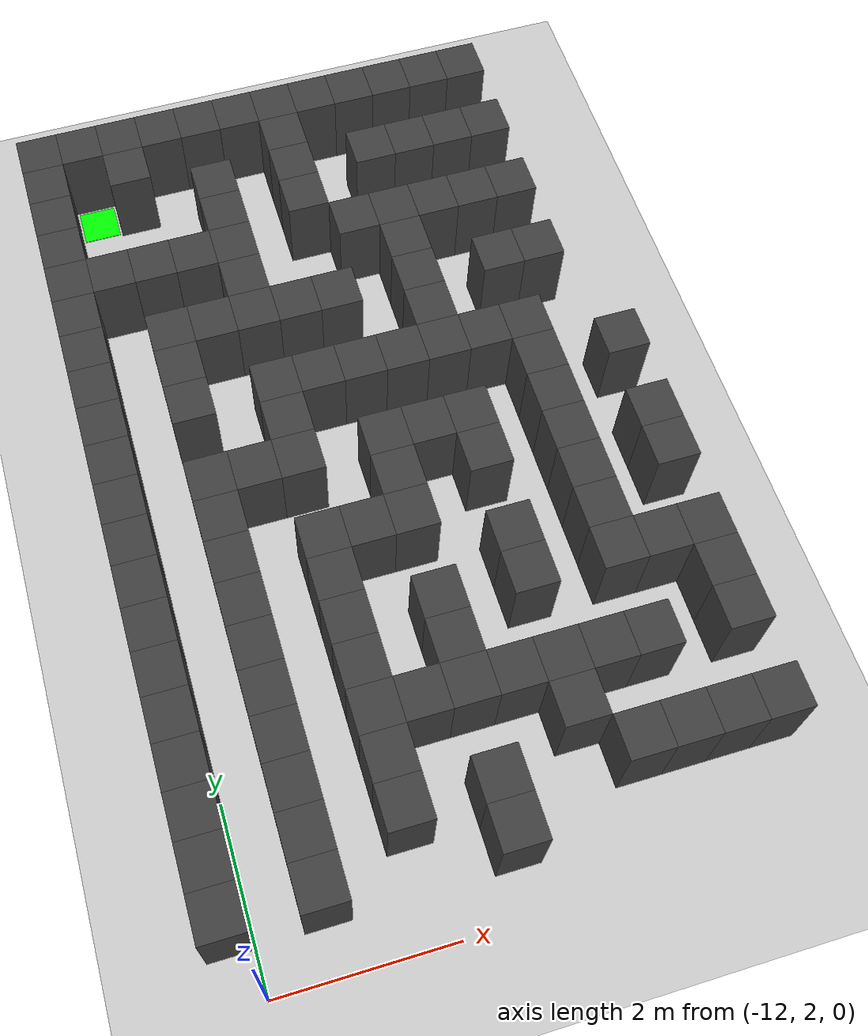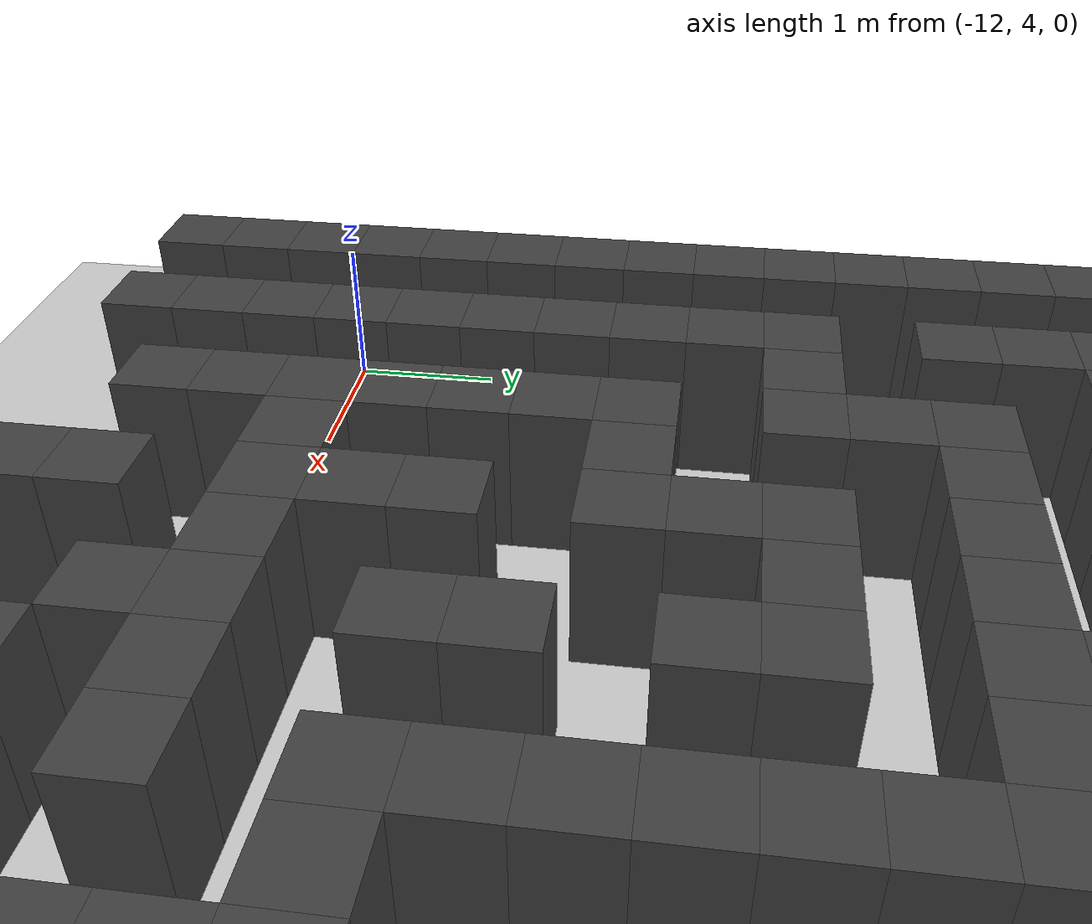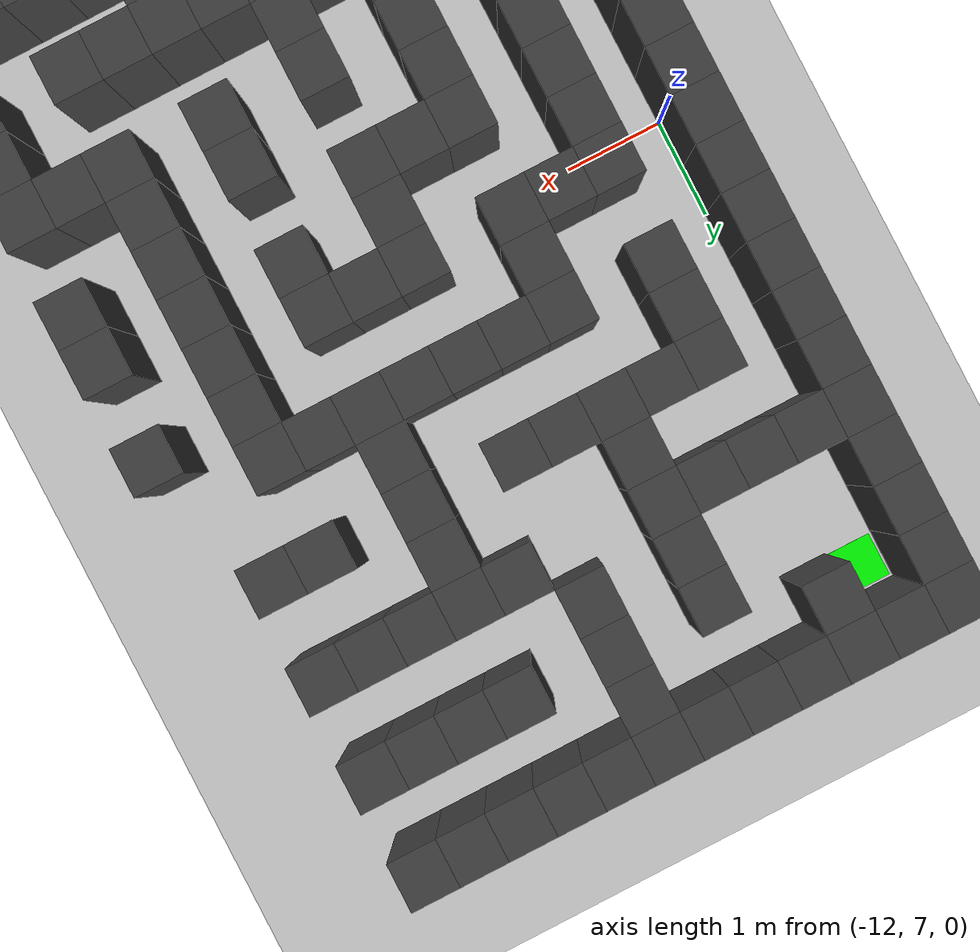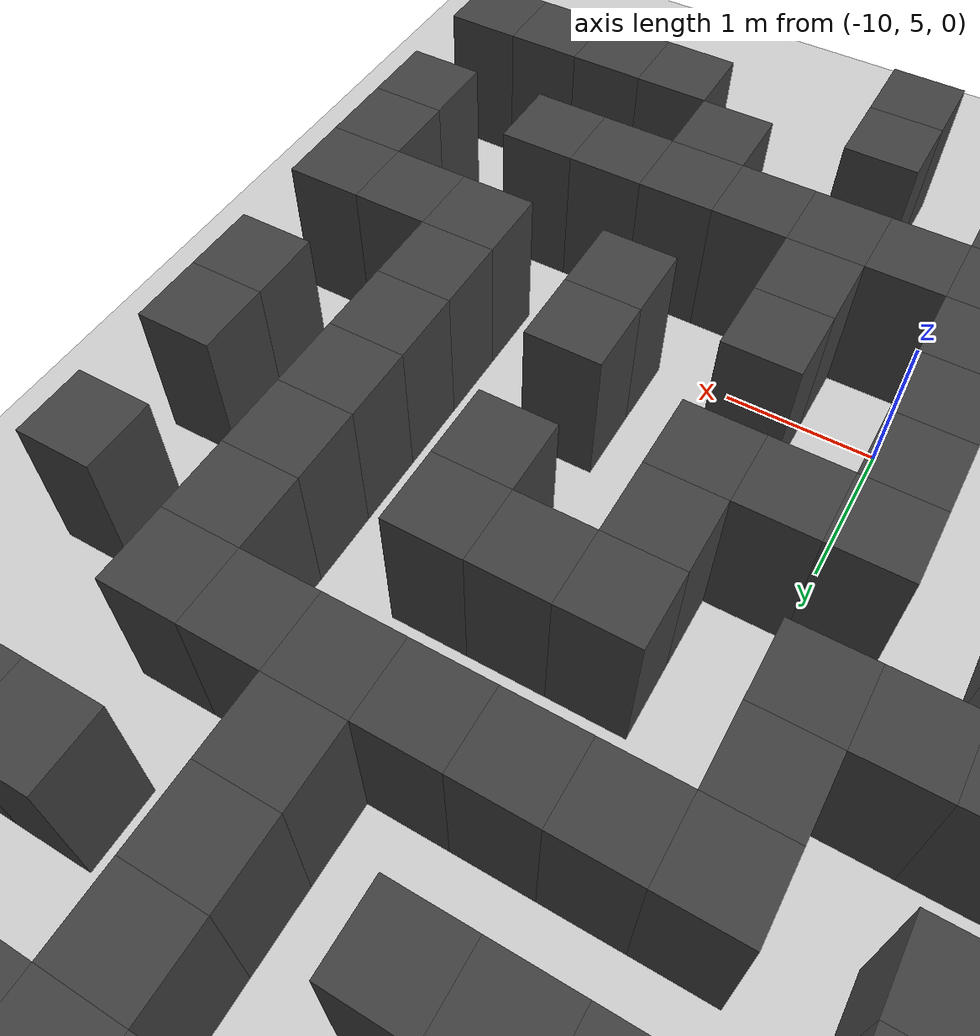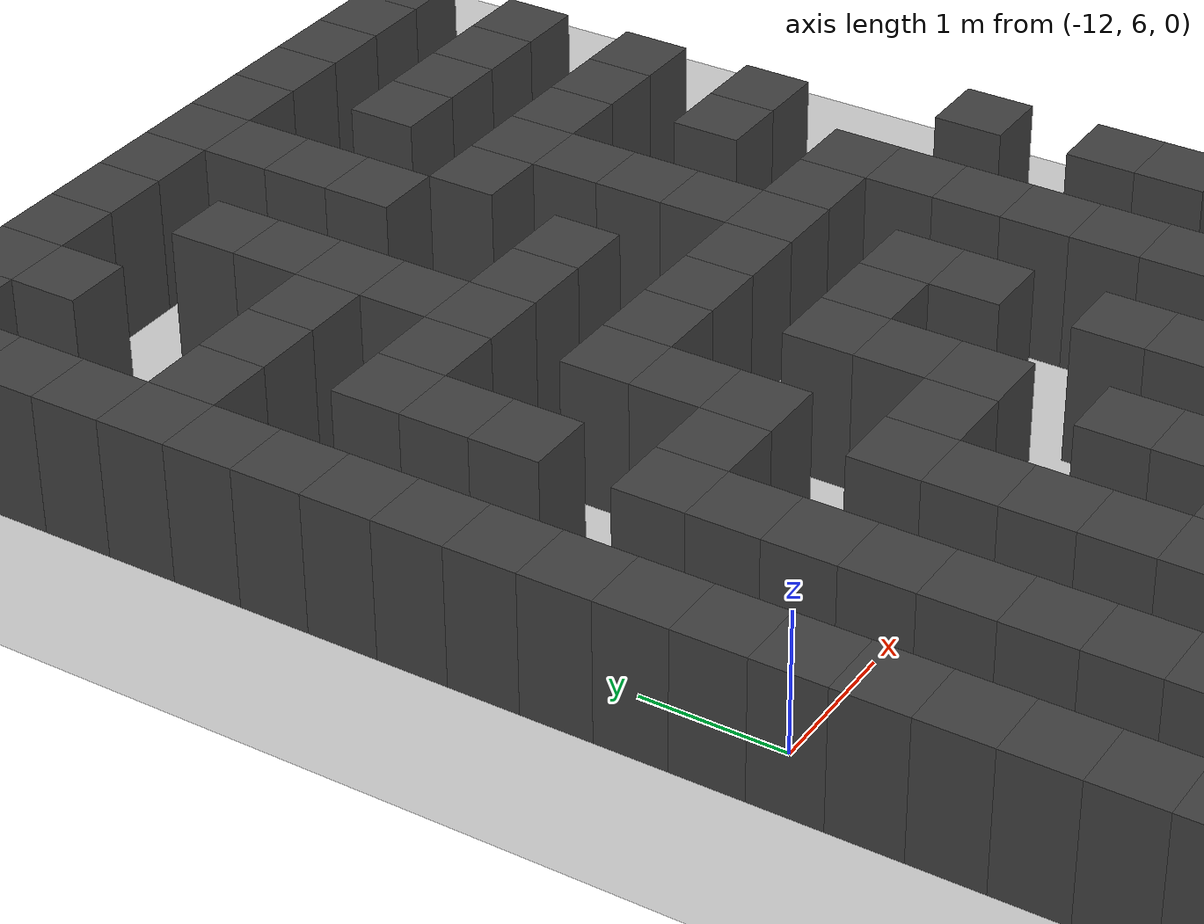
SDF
<sdf version="1.7">
 <world name="map_17508">
  <model name="ground_plane">
   <static>true</static>
   <link name="link">
    <collision name="collision">
     <geometry><plane><normal>0 0 1</normal><size>200 200</size></plane></geometry>
    </collision>
    <visual name="visual">
     <geometry><plane><normal>0 0 1</normal><size>200 200</size></plane></geometry>
     <material><ambient>0.8 0.8 0.8 1</ambient><diffuse>0.8 0.8 0.8 1</diffuse></material>
    </visual>
   </link>
  </model>
  <model name="maze_environment">
   <static>true</static>
   <link name="wall_0">
    <pose>-12.250 12.250 0.500 0 0 0</pose>
    <collision name="col"><geometry><box><size>0.5 0.5 1.0</size></box></geometry></collision>
    <visual name="vis">
     <geometry><box><size>0.5 0.5 1.0</size></box></geometry>
     <material><ambient>0.15 0.15 0.15 1</ambient><diffuse>0.25 0.25 0.25 1</diffuse></material>
    </visual>
   </link>
   <link name="wall_1">
    <pose>-11.750 12.250 0.500 0 0 0</pose>
    <collision name="col"><geometry><box><size>0.5 0.5 1.0</size></box></geometry></collision>
    <visual name="vis">
     <geometry><box><size>0.5 0.5 1.0</size></box></geometry>
     <material><ambient>0.15 0.15 0.15 1</ambient><diffuse>0.25 0.25 0.25 1</diffuse></material>
    </visual>
   </link>
   <link name="wall_2">
    <pose>-11.250 12.250 0.500 0 0 0</pose>
    <collision name="col"><geometry><box><size>0.5 0.5 1.0</size></box></geometry></collision>
    <visual name="vis">
     <geometry><box><size>0.5 0.5 1.0</size></box></geometry>
     <material><ambient>0.15 0.15 0.15 1</ambient><diffuse>0.25 0.25 0.25 1</diffuse></material>
    </visual>
   </link>
   <link name="wall_3">
    <pose>-10.750 12.250 0.500 0 0 0</pose>
    <collision name="col"><geometry><box><size>0.5 0.5 1.0</size></box></geometry></collision>
    <visual name="vis">
     <geometry><box><size>0.5 0.5 1.0</size></box></geometry>
     <material><ambient>0.15 0.15 0.15 1</ambient><diffuse>0.25 0.25 0.25 1</diffuse></material>
    </visual>
   </link>
   <link name="wall_4">
    <pose>-10.250 12.250 0.500 0 0 0</pose>
    <collision name="col"><geometry><box><size>0.5 0.5 1.0</size></box></geometry></collision>
    <visual name="vis">
     <geometry><box><size>0.5 0.5 1.0</size></box></geometry>
     <material><ambient>0.15 0.15 0.15 1</ambient><diffuse>0.25 0.25 0.25 1</diffuse></material>
    </visual>
   </link>
   <link name="wall_5">
    <pose>-9.750 12.250 0.500 0 0 0</pose>
    <collision name="col"><geometry><box><size>0.5 0.5 1.0</size></box></geometry></collision>
    <visual name="vis">
     <geometry><box><size>0.5 0.5 1.0</size></box></geometry>
     <material><ambient>0.15 0.15 0.15 1</ambient><diffuse>0.25 0.25 0.25 1</diffuse></material>
    </visual>
   </link>
   <link name="wall_6">
    <pose>-9.250 12.250 0.500 0 0 0</pose>
    <collision name="col"><geometry><box><size>0.5 0.5 1.0</size></box></geometry></collision>
    <visual name="vis">
     <geometry><box><size>0.5 0.5 1.0</size></box></geometry>
     <material><ambient>0.15 0.15 0.15 1</ambient><diffuse>0.25 0.25 0.25 1</diffuse></material>
    </visual>
   </link>
   <link name="wall_7">
    <pose>-8.750 12.250 0.500 0 0 0</pose>
    <collision name="col"><geometry><box><size>0.5 0.5 1.0</size></box></geometry></collision>
    <visual name="vis">
     <geometry><box><size>0.5 0.5 1.0</size></box></geometry>
     <material><ambient>0.15 0.15 0.15 1</ambient><diffuse>0.25 0.25 0.25 1</diffuse></material>
    </visual>
   </link>
   <link name="wall_8">
    <pose>-8.250 12.250 0.500 0 0 0</pose>
    <collision name="col"><geometry><box><size>0.5 0.5 1.0</size></box></geometry></collision>
    <visual name="vis">
     <geometry><box><size>0.5 0.5 1.0</size></box></geometry>
     <material><ambient>0.15 0.15 0.15 1</ambient><diffuse>0.25 0.25 0.25 1</diffuse></material>
    </visual>
   </link>
   <link name="wall_9">
    <pose>-7.750 12.250 0.500 0 0 0</pose>
    <collision name="col"><geometry><box><size>0.5 0.5 1.0</size></box></geometry></collision>
    <visual name="vis">
     <geometry><box><size>0.5 0.5 1.0</size></box></geometry>
     <material><ambient>0.15 0.15 0.15 1</ambient><diffuse>0.25 0.25 0.25 1</diffuse></material>
    </visual>
   </link>
   <link name="wall_10">
    <pose>-7.250 12.250 0.500 0 0 0</pose>
    <collision name="col"><geometry><box><size>0.5 0.5 1.0</size></box></geometry></collision>
    <visual name="vis">
     <geometry><box><size>0.5 0.5 1.0</size></box></geometry>
     <material><ambient>0.15 0.15 0.15 1</ambient><diffuse>0.25 0.25 0.25 1</diffuse></material>
    </visual>
   </link>
   <link name="wall_11">
    <pose>-6.750 12.250 0.500 0 0 0</pose>
    <collision name="col"><geometry><box><size>0.5 0.5 1.0</size></box></geometry></collision>
    <visual name="vis">
     <geometry><box><size>0.5 0.5 1.0</size></box></geometry>
     <material><ambient>0.15 0.15 0.15 1</ambient><diffuse>0.25 0.25 0.25 1</diffuse></material>
    </visual>
   </link>
   <link name="wall_50">
    <pose>-12.250 11.750 0.500 0 0 0</pose>
    <collision name="col"><geometry><box><size>0.5 0.5 1.0</size></box></geometry></collision>
    <visual name="vis">
     <geometry><box><size>0.5 0.5 1.0</size></box></geometry>
     <material><ambient>0.15 0.15 0.15 1</ambient><diffuse>0.25 0.25 0.25 1</diffuse></material>
    </visual>
   </link>
   <link name="wall_51">
    <pose>-11.250 11.750 0.500 0 0 0</pose>
    <collision name="col"><geometry><box><size>0.5 0.5 1.0</size></box></geometry></collision>
    <visual name="vis">
     <geometry><box><size>0.5 0.5 1.0</size></box></geometry>
     <material><ambient>0.15 0.15 0.15 1</ambient><diffuse>0.25 0.25 0.25 1</diffuse></material>
    </visual>
   </link>
   <link name="wall_52">
    <pose>-9.250 11.750 0.500 0 0 0</pose>
    <collision name="col"><geometry><box><size>0.5 0.5 1.0</size></box></geometry></collision>
    <visual name="vis">
     <geometry><box><size>0.5 0.5 1.0</size></box></geometry>
     <material><ambient>0.15 0.15 0.15 1</ambient><diffuse>0.25 0.25 0.25 1</diffuse></material>
    </visual>
   </link>
   <link name="wall_58">
    <pose>-12.250 11.250 0.500 0 0 0</pose>
    <collision name="col"><geometry><box><size>0.5 0.5 1.0</size></box></geometry></collision>
    <visual name="vis">
     <geometry><box><size>0.5 0.5 1.0</size></box></geometry>
     <material><ambient>0.15 0.15 0.15 1</ambient><diffuse>0.25 0.25 0.25 1</diffuse></material>
    </visual>
   </link>
   <link name="wall_59">
    <pose>-10.250 11.250 0.500 0 0 0</pose>
    <collision name="col"><geometry><box><size>0.5 0.5 1.0</size></box></geometry></collision>
    <visual name="vis">
     <geometry><box><size>0.5 0.5 1.0</size></box></geometry>
     <material><ambient>0.15 0.15 0.15 1</ambient><diffuse>0.25 0.25 0.25 1</diffuse></material>
    </visual>
   </link>
   <link name="wall_60">
    <pose>-9.250 11.250 0.500 0 0 0</pose>
    <collision name="col"><geometry><box><size>0.5 0.5 1.0</size></box></geometry></collision>
    <visual name="vis">
     <geometry><box><size>0.5 0.5 1.0</size></box></geometry>
     <material><ambient>0.15 0.15 0.15 1</ambient><diffuse>0.25 0.25 0.25 1</diffuse></material>
    </visual>
   </link>
   <link name="wall_61">
    <pose>-8.250 11.250 0.500 0 0 0</pose>
    <collision name="col"><geometry><box><size>0.5 0.5 1.0</size></box></geometry></collision>
    <visual name="vis">
     <geometry><box><size>0.5 0.5 1.0</size></box></geometry>
     <material><ambient>0.15 0.15 0.15 1</ambient><diffuse>0.25 0.25 0.25 1</diffuse></material>
    </visual>
   </link>
   <link name="wall_62">
    <pose>-7.750 11.250 0.500 0 0 0</pose>
    <collision name="col"><geometry><box><size>0.5 0.5 1.0</size></box></geometry></collision>
    <visual name="vis">
     <geometry><box><size>0.5 0.5 1.0</size></box></geometry>
     <material><ambient>0.15 0.15 0.15 1</ambient><diffuse>0.25 0.25 0.25 1</diffuse></material>
    </visual>
   </link>
   <link name="wall_63">
    <pose>-7.250 11.250 0.500 0 0 0</pose>
    <collision name="col"><geometry><box><size>0.5 0.5 1.0</size></box></geometry></collision>
    <visual name="vis">
     <geometry><box><size>0.5 0.5 1.0</size></box></geometry>
     <material><ambient>0.15 0.15 0.15 1</ambient><diffuse>0.25 0.25 0.25 1</diffuse></material>
    </visual>
   </link>
   <link name="wall_64">
    <pose>-6.750 11.250 0.500 0 0 0</pose>
    <collision name="col"><geometry><box><size>0.5 0.5 1.0</size></box></geometry></collision>
    <visual name="vis">
     <geometry><box><size>0.5 0.5 1.0</size></box></geometry>
     <material><ambient>0.15 0.15 0.15 1</ambient><diffuse>0.25 0.25 0.25 1</diffuse></material>
    </visual>
   </link>
   <link name="wall_94">
    <pose>-12.250 10.750 0.500 0 0 0</pose>
    <collision name="col"><geometry><box><size>0.5 0.5 1.0</size></box></geometry></collision>
    <visual name="vis">
     <geometry><box><size>0.5 0.5 1.0</size></box></geometry>
     <material><ambient>0.15 0.15 0.15 1</ambient><diffuse>0.25 0.25 0.25 1</diffuse></material>
    </visual>
   </link>
   <link name="wall_95">
    <pose>-10.250 10.750 0.500 0 0 0</pose>
    <collision name="col"><geometry><box><size>0.5 0.5 1.0</size></box></geometry></collision>
    <visual name="vis">
     <geometry><box><size>0.5 0.5 1.0</size></box></geometry>
     <material><ambient>0.15 0.15 0.15 1</ambient><diffuse>0.25 0.25 0.25 1</diffuse></material>
    </visual>
   </link>
   <link name="wall_96">
    <pose>-9.250 10.750 0.500 0 0 0</pose>
    <collision name="col"><geometry><box><size>0.5 0.5 1.0</size></box></geometry></collision>
    <visual name="vis">
     <geometry><box><size>0.5 0.5 1.0</size></box></geometry>
     <material><ambient>0.15 0.15 0.15 1</ambient><diffuse>0.25 0.25 0.25 1</diffuse></material>
    </visual>
   </link>
   <link name="wall_105">
    <pose>-12.250 10.250 0.500 0 0 0</pose>
    <collision name="col"><geometry><box><size>0.5 0.5 1.0</size></box></geometry></collision>
    <visual name="vis">
     <geometry><box><size>0.5 0.5 1.0</size></box></geometry>
     <material><ambient>0.15 0.15 0.15 1</ambient><diffuse>0.25 0.25 0.25 1</diffuse></material>
    </visual>
   </link>
   <link name="wall_106">
    <pose>-11.750 10.250 0.500 0 0 0</pose>
    <collision name="col"><geometry><box><size>0.5 0.5 1.0</size></box></geometry></collision>
    <visual name="vis">
     <geometry><box><size>0.5 0.5 1.0</size></box></geometry>
     <material><ambient>0.15 0.15 0.15 1</ambient><diffuse>0.25 0.25 0.25 1</diffuse></material>
    </visual>
   </link>
   <link name="wall_107">
    <pose>-11.250 10.250 0.500 0 0 0</pose>
    <collision name="col"><geometry><box><size>0.5 0.5 1.0</size></box></geometry></collision>
    <visual name="vis">
     <geometry><box><size>0.5 0.5 1.0</size></box></geometry>
     <material><ambient>0.15 0.15 0.15 1</ambient><diffuse>0.25 0.25 0.25 1</diffuse></material>
    </visual>
   </link>
   <link name="wall_108">
    <pose>-10.750 10.250 0.500 0 0 0</pose>
    <collision name="col"><geometry><box><size>0.5 0.5 1.0</size></box></geometry></collision>
    <visual name="vis">
     <geometry><box><size>0.5 0.5 1.0</size></box></geometry>
     <material><ambient>0.15 0.15 0.15 1</ambient><diffuse>0.25 0.25 0.25 1</diffuse></material>
    </visual>
   </link>
   <link name="wall_109">
    <pose>-10.250 10.250 0.500 0 0 0</pose>
    <collision name="col"><geometry><box><size>0.5 0.5 1.0</size></box></geometry></collision>
    <visual name="vis">
     <geometry><box><size>0.5 0.5 1.0</size></box></geometry>
     <material><ambient>0.15 0.15 0.15 1</ambient><diffuse>0.25 0.25 0.25 1</diffuse></material>
    </visual>
   </link>
   <link name="wall_110">
    <pose>-8.750 10.250 0.500 0 0 0</pose>
    <collision name="col"><geometry><box><size>0.5 0.5 1.0</size></box></geometry></collision>
    <visual name="vis">
     <geometry><box><size>0.5 0.5 1.0</size></box></geometry>
     <material><ambient>0.15 0.15 0.15 1</ambient><diffuse>0.25 0.25 0.25 1</diffuse></material>
    </visual>
   </link>
   <link name="wall_111">
    <pose>-8.250 10.250 0.500 0 0 0</pose>
    <collision name="col"><geometry><box><size>0.5 0.5 1.0</size></box></geometry></collision>
    <visual name="vis">
     <geometry><box><size>0.5 0.5 1.0</size></box></geometry>
     <material><ambient>0.15 0.15 0.15 1</ambient><diffuse>0.25 0.25 0.25 1</diffuse></material>
    </visual>
   </link>
   <link name="wall_112">
    <pose>-7.750 10.250 0.500 0 0 0</pose>
    <collision name="col"><geometry><box><size>0.5 0.5 1.0</size></box></geometry></collision>
    <visual name="vis">
     <geometry><box><size>0.5 0.5 1.0</size></box></geometry>
     <material><ambient>0.15 0.15 0.15 1</ambient><diffuse>0.25 0.25 0.25 1</diffuse></material>
    </visual>
   </link>
   <link name="wall_113">
    <pose>-7.250 10.250 0.500 0 0 0</pose>
    <collision name="col"><geometry><box><size>0.5 0.5 1.0</size></box></geometry></collision>
    <visual name="vis">
     <geometry><box><size>0.5 0.5 1.0</size></box></geometry>
     <material><ambient>0.15 0.15 0.15 1</ambient><diffuse>0.25 0.25 0.25 1</diffuse></material>
    </visual>
   </link>
   <link name="wall_114">
    <pose>-6.750 10.250 0.500 0 0 0</pose>
    <collision name="col"><geometry><box><size>0.5 0.5 1.0</size></box></geometry></collision>
    <visual name="vis">
     <geometry><box><size>0.5 0.5 1.0</size></box></geometry>
     <material><ambient>0.15 0.15 0.15 1</ambient><diffuse>0.25 0.25 0.25 1</diffuse></material>
    </visual>
   </link>
   <link name="wall_146">
    <pose>-12.250 9.750 0.500 0 0 0</pose>
    <collision name="col"><geometry><box><size>0.5 0.5 1.0</size></box></geometry></collision>
    <visual name="vis">
     <geometry><box><size>0.5 0.5 1.0</size></box></geometry>
     <material><ambient>0.15 0.15 0.15 1</ambient><diffuse>0.25 0.25 0.25 1</diffuse></material>
    </visual>
   </link>
   <link name="wall_147">
    <pose>-10.250 9.750 0.500 0 0 0</pose>
    <collision name="col"><geometry><box><size>0.5 0.5 1.0</size></box></geometry></collision>
    <visual name="vis">
     <geometry><box><size>0.5 0.5 1.0</size></box></geometry>
     <material><ambient>0.15 0.15 0.15 1</ambient><diffuse>0.25 0.25 0.25 1</diffuse></material>
    </visual>
   </link>
   <link name="wall_148">
    <pose>-8.250 9.750 0.500 0 0 0</pose>
    <collision name="col"><geometry><box><size>0.5 0.5 1.0</size></box></geometry></collision>
    <visual name="vis">
     <geometry><box><size>0.5 0.5 1.0</size></box></geometry>
     <material><ambient>0.15 0.15 0.15 1</ambient><diffuse>0.25 0.25 0.25 1</diffuse></material>
    </visual>
   </link>
   <link name="wall_159">
    <pose>-12.250 9.250 0.500 0 0 0</pose>
    <collision name="col"><geometry><box><size>0.5 0.5 1.0</size></box></geometry></collision>
    <visual name="vis">
     <geometry><box><size>0.5 0.5 1.0</size></box></geometry>
     <material><ambient>0.15 0.15 0.15 1</ambient><diffuse>0.25 0.25 0.25 1</diffuse></material>
    </visual>
   </link>
   <link name="wall_160">
    <pose>-11.250 9.250 0.500 0 0 0</pose>
    <collision name="col"><geometry><box><size>0.5 0.5 1.0</size></box></geometry></collision>
    <visual name="vis">
     <geometry><box><size>0.5 0.5 1.0</size></box></geometry>
     <material><ambient>0.15 0.15 0.15 1</ambient><diffuse>0.25 0.25 0.25 1</diffuse></material>
    </visual>
   </link>
   <link name="wall_161">
    <pose>-10.750 9.250 0.500 0 0 0</pose>
    <collision name="col"><geometry><box><size>0.5 0.5 1.0</size></box></geometry></collision>
    <visual name="vis">
     <geometry><box><size>0.5 0.5 1.0</size></box></geometry>
     <material><ambient>0.15 0.15 0.15 1</ambient><diffuse>0.25 0.25 0.25 1</diffuse></material>
    </visual>
   </link>
   <link name="wall_162">
    <pose>-10.250 9.250 0.500 0 0 0</pose>
    <collision name="col"><geometry><box><size>0.5 0.5 1.0</size></box></geometry></collision>
    <visual name="vis">
     <geometry><box><size>0.5 0.5 1.0</size></box></geometry>
     <material><ambient>0.15 0.15 0.15 1</ambient><diffuse>0.25 0.25 0.25 1</diffuse></material>
    </visual>
   </link>
   <link name="wall_163">
    <pose>-9.750 9.250 0.500 0 0 0</pose>
    <collision name="col"><geometry><box><size>0.5 0.5 1.0</size></box></geometry></collision>
    <visual name="vis">
     <geometry><box><size>0.5 0.5 1.0</size></box></geometry>
     <material><ambient>0.15 0.15 0.15 1</ambient><diffuse>0.25 0.25 0.25 1</diffuse></material>
    </visual>
   </link>
   <link name="wall_164">
    <pose>-9.250 9.250 0.500 0 0 0</pose>
    <collision name="col"><geometry><box><size>0.5 0.5 1.0</size></box></geometry></collision>
    <visual name="vis">
     <geometry><box><size>0.5 0.5 1.0</size></box></geometry>
     <material><ambient>0.15 0.15 0.15 1</ambient><diffuse>0.25 0.25 0.25 1</diffuse></material>
    </visual>
   </link>
   <link name="wall_165">
    <pose>-8.250 9.250 0.500 0 0 0</pose>
    <collision name="col"><geometry><box><size>0.5 0.5 1.0</size></box></geometry></collision>
    <visual name="vis">
     <geometry><box><size>0.5 0.5 1.0</size></box></geometry>
     <material><ambient>0.15 0.15 0.15 1</ambient><diffuse>0.25 0.25 0.25 1</diffuse></material>
    </visual>
   </link>
   <link name="wall_166">
    <pose>-7.250 9.250 0.500 0 0 0</pose>
    <collision name="col"><geometry><box><size>0.5 0.5 1.0</size></box></geometry></collision>
    <visual name="vis">
     <geometry><box><size>0.5 0.5 1.0</size></box></geometry>
     <material><ambient>0.15 0.15 0.15 1</ambient><diffuse>0.25 0.25 0.25 1</diffuse></material>
    </visual>
   </link>
   <link name="wall_167">
    <pose>-6.750 9.250 0.500 0 0 0</pose>
    <collision name="col"><geometry><box><size>0.5 0.5 1.0</size></box></geometry></collision>
    <visual name="vis">
     <geometry><box><size>0.5 0.5 1.0</size></box></geometry>
     <material><ambient>0.15 0.15 0.15 1</ambient><diffuse>0.25 0.25 0.25 1</diffuse></material>
    </visual>
   </link>
   <link name="wall_191">
    <pose>-12.250 8.750 0.500 0 0 0</pose>
    <collision name="col"><geometry><box><size>0.5 0.5 1.0</size></box></geometry></collision>
    <visual name="vis">
     <geometry><box><size>0.5 0.5 1.0</size></box></geometry>
     <material><ambient>0.15 0.15 0.15 1</ambient><diffuse>0.25 0.25 0.25 1</diffuse></material>
    </visual>
   </link>
   <link name="wall_192">
    <pose>-11.250 8.750 0.500 0 0 0</pose>
    <collision name="col"><geometry><box><size>0.5 0.5 1.0</size></box></geometry></collision>
    <visual name="vis">
     <geometry><box><size>0.5 0.5 1.0</size></box></geometry>
     <material><ambient>0.15 0.15 0.15 1</ambient><diffuse>0.25 0.25 0.25 1</diffuse></material>
    </visual>
   </link>
   <link name="wall_193">
    <pose>-8.250 8.750 0.500 0 0 0</pose>
    <collision name="col"><geometry><box><size>0.5 0.5 1.0</size></box></geometry></collision>
    <visual name="vis">
     <geometry><box><size>0.5 0.5 1.0</size></box></geometry>
     <material><ambient>0.15 0.15 0.15 1</ambient><diffuse>0.25 0.25 0.25 1</diffuse></material>
    </visual>
   </link>
   <link name="wall_205">
    <pose>-12.250 8.250 0.500 0 0 0</pose>
    <collision name="col"><geometry><box><size>0.5 0.5 1.0</size></box></geometry></collision>
    <visual name="vis">
     <geometry><box><size>0.5 0.5 1.0</size></box></geometry>
     <material><ambient>0.15 0.15 0.15 1</ambient><diffuse>0.25 0.25 0.25 1</diffuse></material>
    </visual>
   </link>
   <link name="wall_206">
    <pose>-11.250 8.250 0.500 0 0 0</pose>
    <collision name="col"><geometry><box><size>0.5 0.5 1.0</size></box></geometry></collision>
    <visual name="vis">
     <geometry><box><size>0.5 0.5 1.0</size></box></geometry>
     <material><ambient>0.15 0.15 0.15 1</ambient><diffuse>0.25 0.25 0.25 1</diffuse></material>
    </visual>
   </link>
   <link name="wall_207">
    <pose>-10.250 8.250 0.500 0 0 0</pose>
    <collision name="col"><geometry><box><size>0.5 0.5 1.0</size></box></geometry></collision>
    <visual name="vis">
     <geometry><box><size>0.5 0.5 1.0</size></box></geometry>
     <material><ambient>0.15 0.15 0.15 1</ambient><diffuse>0.25 0.25 0.25 1</diffuse></material>
    </visual>
   </link>
   <link name="wall_208">
    <pose>-9.750 8.250 0.500 0 0 0</pose>
    <collision name="col"><geometry><box><size>0.5 0.5 1.0</size></box></geometry></collision>
    <visual name="vis">
     <geometry><box><size>0.5 0.5 1.0</size></box></geometry>
     <material><ambient>0.15 0.15 0.15 1</ambient><diffuse>0.25 0.25 0.25 1</diffuse></material>
    </visual>
   </link>
   <link name="wall_209">
    <pose>-9.250 8.250 0.500 0 0 0</pose>
    <collision name="col"><geometry><box><size>0.5 0.5 1.0</size></box></geometry></collision>
    <visual name="vis">
     <geometry><box><size>0.5 0.5 1.0</size></box></geometry>
     <material><ambient>0.15 0.15 0.15 1</ambient><diffuse>0.25 0.25 0.25 1</diffuse></material>
    </visual>
   </link>
   <link name="wall_210">
    <pose>-8.750 8.250 0.500 0 0 0</pose>
    <collision name="col"><geometry><box><size>0.5 0.5 1.0</size></box></geometry></collision>
    <visual name="vis">
     <geometry><box><size>0.5 0.5 1.0</size></box></geometry>
     <material><ambient>0.15 0.15 0.15 1</ambient><diffuse>0.25 0.25 0.25 1</diffuse></material>
    </visual>
   </link>
   <link name="wall_211">
    <pose>-8.250 8.250 0.500 0 0 0</pose>
    <collision name="col"><geometry><box><size>0.5 0.5 1.0</size></box></geometry></collision>
    <visual name="vis">
     <geometry><box><size>0.5 0.5 1.0</size></box></geometry>
     <material><ambient>0.15 0.15 0.15 1</ambient><diffuse>0.25 0.25 0.25 1</diffuse></material>
    </visual>
   </link>
   <link name="wall_212">
    <pose>-7.750 8.250 0.500 0 0 0</pose>
    <collision name="col"><geometry><box><size>0.5 0.5 1.0</size></box></geometry></collision>
    <visual name="vis">
     <geometry><box><size>0.5 0.5 1.0</size></box></geometry>
     <material><ambient>0.15 0.15 0.15 1</ambient><diffuse>0.25 0.25 0.25 1</diffuse></material>
    </visual>
   </link>
   <link name="wall_213">
    <pose>-7.250 8.250 0.500 0 0 0</pose>
    <collision name="col"><geometry><box><size>0.5 0.5 1.0</size></box></geometry></collision>
    <visual name="vis">
     <geometry><box><size>0.5 0.5 1.0</size></box></geometry>
     <material><ambient>0.15 0.15 0.15 1</ambient><diffuse>0.25 0.25 0.25 1</diffuse></material>
    </visual>
   </link>
   <link name="wall_242">
    <pose>-12.250 7.750 0.500 0 0 0</pose>
    <collision name="col"><geometry><box><size>0.5 0.5 1.0</size></box></geometry></collision>
    <visual name="vis">
     <geometry><box><size>0.5 0.5 1.0</size></box></geometry>
     <material><ambient>0.15 0.15 0.15 1</ambient><diffuse>0.25 0.25 0.25 1</diffuse></material>
    </visual>
   </link>
   <link name="wall_243">
    <pose>-10.250 7.750 0.500 0 0 0</pose>
    <collision name="col"><geometry><box><size>0.5 0.5 1.0</size></box></geometry></collision>
    <visual name="vis">
     <geometry><box><size>0.5 0.5 1.0</size></box></geometry>
     <material><ambient>0.15 0.15 0.15 1</ambient><diffuse>0.25 0.25 0.25 1</diffuse></material>
    </visual>
   </link>
   <link name="wall_244">
    <pose>-7.250 7.750 0.500 0 0 0</pose>
    <collision name="col"><geometry><box><size>0.5 0.5 1.0</size></box></geometry></collision>
    <visual name="vis">
     <geometry><box><size>0.5 0.5 1.0</size></box></geometry>
     <material><ambient>0.15 0.15 0.15 1</ambient><diffuse>0.25 0.25 0.25 1</diffuse></material>
    </visual>
   </link>
   <link name="wall_245">
    <pose>-6.250 7.750 0.500 0 0 0</pose>
    <collision name="col"><geometry><box><size>0.5 0.5 1.0</size></box></geometry></collision>
    <visual name="vis">
     <geometry><box><size>0.5 0.5 1.0</size></box></geometry>
     <material><ambient>0.15 0.15 0.15 1</ambient><diffuse>0.25 0.25 0.25 1</diffuse></material>
    </visual>
   </link>
   <link name="wall_256">
    <pose>-12.250 7.250 0.500 0 0 0</pose>
    <collision name="col"><geometry><box><size>0.5 0.5 1.0</size></box></geometry></collision>
    <visual name="vis">
     <geometry><box><size>0.5 0.5 1.0</size></box></geometry>
     <material><ambient>0.15 0.15 0.15 1</ambient><diffuse>0.25 0.25 0.25 1</diffuse></material>
    </visual>
   </link>
   <link name="wall_257">
    <pose>-11.250 7.250 0.500 0 0 0</pose>
    <collision name="col"><geometry><box><size>0.5 0.5 1.0</size></box></geometry></collision>
    <visual name="vis">
     <geometry><box><size>0.5 0.5 1.0</size></box></geometry>
     <material><ambient>0.15 0.15 0.15 1</ambient><diffuse>0.25 0.25 0.25 1</diffuse></material>
    </visual>
   </link>
   <link name="wall_258">
    <pose>-10.750 7.250 0.500 0 0 0</pose>
    <collision name="col"><geometry><box><size>0.5 0.5 1.0</size></box></geometry></collision>
    <visual name="vis">
     <geometry><box><size>0.5 0.5 1.0</size></box></geometry>
     <material><ambient>0.15 0.15 0.15 1</ambient><diffuse>0.25 0.25 0.25 1</diffuse></material>
    </visual>
   </link>
   <link name="wall_259">
    <pose>-10.250 7.250 0.500 0 0 0</pose>
    <collision name="col"><geometry><box><size>0.5 0.5 1.0</size></box></geometry></collision>
    <visual name="vis">
     <geometry><box><size>0.5 0.5 1.0</size></box></geometry>
     <material><ambient>0.15 0.15 0.15 1</ambient><diffuse>0.25 0.25 0.25 1</diffuse></material>
    </visual>
   </link>
   <link name="wall_260">
    <pose>-9.250 7.250 0.500 0 0 0</pose>
    <collision name="col"><geometry><box><size>0.5 0.5 1.0</size></box></geometry></collision>
    <visual name="vis">
     <geometry><box><size>0.5 0.5 1.0</size></box></geometry>
     <material><ambient>0.15 0.15 0.15 1</ambient><diffuse>0.25 0.25 0.25 1</diffuse></material>
    </visual>
   </link>
   <link name="wall_261">
    <pose>-8.750 7.250 0.500 0 0 0</pose>
    <collision name="col"><geometry><box><size>0.5 0.5 1.0</size></box></geometry></collision>
    <visual name="vis">
     <geometry><box><size>0.5 0.5 1.0</size></box></geometry>
     <material><ambient>0.15 0.15 0.15 1</ambient><diffuse>0.25 0.25 0.25 1</diffuse></material>
    </visual>
   </link>
   <link name="wall_262">
    <pose>-8.250 7.250 0.500 0 0 0</pose>
    <collision name="col"><geometry><box><size>0.5 0.5 1.0</size></box></geometry></collision>
    <visual name="vis">
     <geometry><box><size>0.5 0.5 1.0</size></box></geometry>
     <material><ambient>0.15 0.15 0.15 1</ambient><diffuse>0.25 0.25 0.25 1</diffuse></material>
    </visual>
   </link>
   <link name="wall_263">
    <pose>-7.250 7.250 0.500 0 0 0</pose>
    <collision name="col"><geometry><box><size>0.5 0.5 1.0</size></box></geometry></collision>
    <visual name="vis">
     <geometry><box><size>0.5 0.5 1.0</size></box></geometry>
     <material><ambient>0.15 0.15 0.15 1</ambient><diffuse>0.25 0.25 0.25 1</diffuse></material>
    </visual>
   </link>
   <link name="wall_287">
    <pose>-12.250 6.750 0.500 0 0 0</pose>
    <collision name="col"><geometry><box><size>0.5 0.5 1.0</size></box></geometry></collision>
    <visual name="vis">
     <geometry><box><size>0.5 0.5 1.0</size></box></geometry>
     <material><ambient>0.15 0.15 0.15 1</ambient><diffuse>0.25 0.25 0.25 1</diffuse></material>
    </visual>
   </link>
   <link name="wall_288">
    <pose>-11.250 6.750 0.500 0 0 0</pose>
    <collision name="col"><geometry><box><size>0.5 0.5 1.0</size></box></geometry></collision>
    <visual name="vis">
     <geometry><box><size>0.5 0.5 1.0</size></box></geometry>
     <material><ambient>0.15 0.15 0.15 1</ambient><diffuse>0.25 0.25 0.25 1</diffuse></material>
    </visual>
   </link>
   <link name="wall_289">
    <pose>-9.250 6.750 0.500 0 0 0</pose>
    <collision name="col"><geometry><box><size>0.5 0.5 1.0</size></box></geometry></collision>
    <visual name="vis">
     <geometry><box><size>0.5 0.5 1.0</size></box></geometry>
     <material><ambient>0.15 0.15 0.15 1</ambient><diffuse>0.25 0.25 0.25 1</diffuse></material>
    </visual>
   </link>
   <link name="wall_290">
    <pose>-8.250 6.750 0.500 0 0 0</pose>
    <collision name="col"><geometry><box><size>0.5 0.5 1.0</size></box></geometry></collision>
    <visual name="vis">
     <geometry><box><size>0.5 0.5 1.0</size></box></geometry>
     <material><ambient>0.15 0.15 0.15 1</ambient><diffuse>0.25 0.25 0.25 1</diffuse></material>
    </visual>
   </link>
   <link name="wall_291">
    <pose>-7.250 6.750 0.500 0 0 0</pose>
    <collision name="col"><geometry><box><size>0.5 0.5 1.0</size></box></geometry></collision>
    <visual name="vis">
     <geometry><box><size>0.5 0.5 1.0</size></box></geometry>
     <material><ambient>0.15 0.15 0.15 1</ambient><diffuse>0.25 0.25 0.25 1</diffuse></material>
    </visual>
   </link>
   <link name="wall_292">
    <pose>-6.250 6.750 0.500 0 0 0</pose>
    <collision name="col"><geometry><box><size>0.5 0.5 1.0</size></box></geometry></collision>
    <visual name="vis">
     <geometry><box><size>0.5 0.5 1.0</size></box></geometry>
     <material><ambient>0.15 0.15 0.15 1</ambient><diffuse>0.25 0.25 0.25 1</diffuse></material>
    </visual>
   </link>
   <link name="wall_306">
    <pose>-12.250 6.250 0.500 0 0 0</pose>
    <collision name="col"><geometry><box><size>0.5 0.5 1.0</size></box></geometry></collision>
    <visual name="vis">
     <geometry><box><size>0.5 0.5 1.0</size></box></geometry>
     <material><ambient>0.15 0.15 0.15 1</ambient><diffuse>0.25 0.25 0.25 1</diffuse></material>
    </visual>
   </link>
   <link name="wall_307">
    <pose>-11.250 6.250 0.500 0 0 0</pose>
    <collision name="col"><geometry><box><size>0.5 0.5 1.0</size></box></geometry></collision>
    <visual name="vis">
     <geometry><box><size>0.5 0.5 1.0</size></box></geometry>
     <material><ambient>0.15 0.15 0.15 1</ambient><diffuse>0.25 0.25 0.25 1</diffuse></material>
    </visual>
   </link>
   <link name="wall_308">
    <pose>-10.250 6.250 0.500 0 0 0</pose>
    <collision name="col"><geometry><box><size>0.5 0.5 1.0</size></box></geometry></collision>
    <visual name="vis">
     <geometry><box><size>0.5 0.5 1.0</size></box></geometry>
     <material><ambient>0.15 0.15 0.15 1</ambient><diffuse>0.25 0.25 0.25 1</diffuse></material>
    </visual>
   </link>
   <link name="wall_309">
    <pose>-9.750 6.250 0.500 0 0 0</pose>
    <collision name="col"><geometry><box><size>0.5 0.5 1.0</size></box></geometry></collision>
    <visual name="vis">
     <geometry><box><size>0.5 0.5 1.0</size></box></geometry>
     <material><ambient>0.15 0.15 0.15 1</ambient><diffuse>0.25 0.25 0.25 1</diffuse></material>
    </visual>
   </link>
   <link name="wall_310">
    <pose>-9.250 6.250 0.500 0 0 0</pose>
    <collision name="col"><geometry><box><size>0.5 0.5 1.0</size></box></geometry></collision>
    <visual name="vis">
     <geometry><box><size>0.5 0.5 1.0</size></box></geometry>
     <material><ambient>0.15 0.15 0.15 1</ambient><diffuse>0.25 0.25 0.25 1</diffuse></material>
    </visual>
   </link>
   <link name="wall_311">
    <pose>-7.250 6.250 0.500 0 0 0</pose>
    <collision name="col"><geometry><box><size>0.5 0.5 1.0</size></box></geometry></collision>
    <visual name="vis">
     <geometry><box><size>0.5 0.5 1.0</size></box></geometry>
     <material><ambient>0.15 0.15 0.15 1</ambient><diffuse>0.25 0.25 0.25 1</diffuse></material>
    </visual>
   </link>
   <link name="wall_312">
    <pose>-6.250 6.250 0.500 0 0 0</pose>
    <collision name="col"><geometry><box><size>0.5 0.5 1.0</size></box></geometry></collision>
    <visual name="vis">
     <geometry><box><size>0.5 0.5 1.0</size></box></geometry>
     <material><ambient>0.15 0.15 0.15 1</ambient><diffuse>0.25 0.25 0.25 1</diffuse></material>
    </visual>
   </link>
   <link name="wall_336">
    <pose>-12.250 5.750 0.500 0 0 0</pose>
    <collision name="col"><geometry><box><size>0.5 0.5 1.0</size></box></geometry></collision>
    <visual name="vis">
     <geometry><box><size>0.5 0.5 1.0</size></box></geometry>
     <material><ambient>0.15 0.15 0.15 1</ambient><diffuse>0.25 0.25 0.25 1</diffuse></material>
    </visual>
   </link>
   <link name="wall_337">
    <pose>-11.250 5.750 0.500 0 0 0</pose>
    <collision name="col"><geometry><box><size>0.5 0.5 1.0</size></box></geometry></collision>
    <visual name="vis">
     <geometry><box><size>0.5 0.5 1.0</size></box></geometry>
     <material><ambient>0.15 0.15 0.15 1</ambient><diffuse>0.25 0.25 0.25 1</diffuse></material>
    </visual>
   </link>
   <link name="wall_338">
    <pose>-10.250 5.750 0.500 0 0 0</pose>
    <collision name="col"><geometry><box><size>0.5 0.5 1.0</size></box></geometry></collision>
    <visual name="vis">
     <geometry><box><size>0.5 0.5 1.0</size></box></geometry>
     <material><ambient>0.15 0.15 0.15 1</ambient><diffuse>0.25 0.25 0.25 1</diffuse></material>
    </visual>
   </link>
   <link name="wall_339">
    <pose>-8.250 5.750 0.500 0 0 0</pose>
    <collision name="col"><geometry><box><size>0.5 0.5 1.0</size></box></geometry></collision>
    <visual name="vis">
     <geometry><box><size>0.5 0.5 1.0</size></box></geometry>
     <material><ambient>0.15 0.15 0.15 1</ambient><diffuse>0.25 0.25 0.25 1</diffuse></material>
    </visual>
   </link>
   <link name="wall_340">
    <pose>-7.250 5.750 0.500 0 0 0</pose>
    <collision name="col"><geometry><box><size>0.5 0.5 1.0</size></box></geometry></collision>
    <visual name="vis">
     <geometry><box><size>0.5 0.5 1.0</size></box></geometry>
     <material><ambient>0.15 0.15 0.15 1</ambient><diffuse>0.25 0.25 0.25 1</diffuse></material>
    </visual>
   </link>
   <link name="wall_351">
    <pose>-12.250 5.250 0.500 0 0 0</pose>
    <collision name="col"><geometry><box><size>0.5 0.5 1.0</size></box></geometry></collision>
    <visual name="vis">
     <geometry><box><size>0.5 0.5 1.0</size></box></geometry>
     <material><ambient>0.15 0.15 0.15 1</ambient><diffuse>0.25 0.25 0.25 1</diffuse></material>
    </visual>
   </link>
   <link name="wall_352">
    <pose>-11.250 5.250 0.500 0 0 0</pose>
    <collision name="col"><geometry><box><size>0.5 0.5 1.0</size></box></geometry></collision>
    <visual name="vis">
     <geometry><box><size>0.5 0.5 1.0</size></box></geometry>
     <material><ambient>0.15 0.15 0.15 1</ambient><diffuse>0.25 0.25 0.25 1</diffuse></material>
    </visual>
   </link>
   <link name="wall_353">
    <pose>-10.250 5.250 0.500 0 0 0</pose>
    <collision name="col"><geometry><box><size>0.5 0.5 1.0</size></box></geometry></collision>
    <visual name="vis">
     <geometry><box><size>0.5 0.5 1.0</size></box></geometry>
     <material><ambient>0.15 0.15 0.15 1</ambient><diffuse>0.25 0.25 0.25 1</diffuse></material>
    </visual>
   </link>
   <link name="wall_354">
    <pose>-9.250 5.250 0.500 0 0 0</pose>
    <collision name="col"><geometry><box><size>0.5 0.5 1.0</size></box></geometry></collision>
    <visual name="vis">
     <geometry><box><size>0.5 0.5 1.0</size></box></geometry>
     <material><ambient>0.15 0.15 0.15 1</ambient><diffuse>0.25 0.25 0.25 1</diffuse></material>
    </visual>
   </link>
   <link name="wall_355">
    <pose>-8.250 5.250 0.500 0 0 0</pose>
    <collision name="col"><geometry><box><size>0.5 0.5 1.0</size></box></geometry></collision>
    <visual name="vis">
     <geometry><box><size>0.5 0.5 1.0</size></box></geometry>
     <material><ambient>0.15 0.15 0.15 1</ambient><diffuse>0.25 0.25 0.25 1</diffuse></material>
    </visual>
   </link>
   <link name="wall_356">
    <pose>-7.250 5.250 0.500 0 0 0</pose>
    <collision name="col"><geometry><box><size>0.5 0.5 1.0</size></box></geometry></collision>
    <visual name="vis">
     <geometry><box><size>0.5 0.5 1.0</size></box></geometry>
     <material><ambient>0.15 0.15 0.15 1</ambient><diffuse>0.25 0.25 0.25 1</diffuse></material>
    </visual>
   </link>
   <link name="wall_357">
    <pose>-6.750 5.250 0.500 0 0 0</pose>
    <collision name="col"><geometry><box><size>0.5 0.5 1.0</size></box></geometry></collision>
    <visual name="vis">
     <geometry><box><size>0.5 0.5 1.0</size></box></geometry>
     <material><ambient>0.15 0.15 0.15 1</ambient><diffuse>0.25 0.25 0.25 1</diffuse></material>
    </visual>
   </link>
   <link name="wall_358">
    <pose>-6.250 5.250 0.500 0 0 0</pose>
    <collision name="col"><geometry><box><size>0.5 0.5 1.0</size></box></geometry></collision>
    <visual name="vis">
     <geometry><box><size>0.5 0.5 1.0</size></box></geometry>
     <material><ambient>0.15 0.15 0.15 1</ambient><diffuse>0.25 0.25 0.25 1</diffuse></material>
    </visual>
   </link>
   <link name="wall_383">
    <pose>-12.250 4.750 0.500 0 0 0</pose>
    <collision name="col"><geometry><box><size>0.5 0.5 1.0</size></box></geometry></collision>
    <visual name="vis">
     <geometry><box><size>0.5 0.5 1.0</size></box></geometry>
     <material><ambient>0.15 0.15 0.15 1</ambient><diffuse>0.25 0.25 0.25 1</diffuse></material>
    </visual>
   </link>
   <link name="wall_384">
    <pose>-11.250 4.750 0.500 0 0 0</pose>
    <collision name="col"><geometry><box><size>0.5 0.5 1.0</size></box></geometry></collision>
    <visual name="vis">
     <geometry><box><size>0.5 0.5 1.0</size></box></geometry>
     <material><ambient>0.15 0.15 0.15 1</ambient><diffuse>0.25 0.25 0.25 1</diffuse></material>
    </visual>
   </link>
   <link name="wall_385">
    <pose>-10.250 4.750 0.500 0 0 0</pose>
    <collision name="col"><geometry><box><size>0.5 0.5 1.0</size></box></geometry></collision>
    <visual name="vis">
     <geometry><box><size>0.5 0.5 1.0</size></box></geometry>
     <material><ambient>0.15 0.15 0.15 1</ambient><diffuse>0.25 0.25 0.25 1</diffuse></material>
    </visual>
   </link>
   <link name="wall_386">
    <pose>-9.250 4.750 0.500 0 0 0</pose>
    <collision name="col"><geometry><box><size>0.5 0.5 1.0</size></box></geometry></collision>
    <visual name="vis">
     <geometry><box><size>0.5 0.5 1.0</size></box></geometry>
     <material><ambient>0.15 0.15 0.15 1</ambient><diffuse>0.25 0.25 0.25 1</diffuse></material>
    </visual>
   </link>
   <link name="wall_387">
    <pose>-6.250 4.750 0.500 0 0 0</pose>
    <collision name="col"><geometry><box><size>0.5 0.5 1.0</size></box></geometry></collision>
    <visual name="vis">
     <geometry><box><size>0.5 0.5 1.0</size></box></geometry>
     <material><ambient>0.15 0.15 0.15 1</ambient><diffuse>0.25 0.25 0.25 1</diffuse></material>
    </visual>
   </link>
   <link name="wall_398">
    <pose>-12.250 4.250 0.500 0 0 0</pose>
    <collision name="col"><geometry><box><size>0.5 0.5 1.0</size></box></geometry></collision>
    <visual name="vis">
     <geometry><box><size>0.5 0.5 1.0</size></box></geometry>
     <material><ambient>0.15 0.15 0.15 1</ambient><diffuse>0.25 0.25 0.25 1</diffuse></material>
    </visual>
   </link>
   <link name="wall_399">
    <pose>-11.250 4.250 0.500 0 0 0</pose>
    <collision name="col"><geometry><box><size>0.5 0.5 1.0</size></box></geometry></collision>
    <visual name="vis">
     <geometry><box><size>0.5 0.5 1.0</size></box></geometry>
     <material><ambient>0.15 0.15 0.15 1</ambient><diffuse>0.25 0.25 0.25 1</diffuse></material>
    </visual>
   </link>
   <link name="wall_400">
    <pose>-10.250 4.250 0.500 0 0 0</pose>
    <collision name="col"><geometry><box><size>0.5 0.5 1.0</size></box></geometry></collision>
    <visual name="vis">
     <geometry><box><size>0.5 0.5 1.0</size></box></geometry>
     <material><ambient>0.15 0.15 0.15 1</ambient><diffuse>0.25 0.25 0.25 1</diffuse></material>
    </visual>
   </link>
   <link name="wall_401">
    <pose>-9.750 4.250 0.500 0 0 0</pose>
    <collision name="col"><geometry><box><size>0.5 0.5 1.0</size></box></geometry></collision>
    <visual name="vis">
     <geometry><box><size>0.5 0.5 1.0</size></box></geometry>
     <material><ambient>0.15 0.15 0.15 1</ambient><diffuse>0.25 0.25 0.25 1</diffuse></material>
    </visual>
   </link>
   <link name="wall_402">
    <pose>-9.250 4.250 0.500 0 0 0</pose>
    <collision name="col"><geometry><box><size>0.5 0.5 1.0</size></box></geometry></collision>
    <visual name="vis">
     <geometry><box><size>0.5 0.5 1.0</size></box></geometry>
     <material><ambient>0.15 0.15 0.15 1</ambient><diffuse>0.25 0.25 0.25 1</diffuse></material>
    </visual>
   </link>
   <link name="wall_403">
    <pose>-8.750 4.250 0.500 0 0 0</pose>
    <collision name="col"><geometry><box><size>0.5 0.5 1.0</size></box></geometry></collision>
    <visual name="vis">
     <geometry><box><size>0.5 0.5 1.0</size></box></geometry>
     <material><ambient>0.15 0.15 0.15 1</ambient><diffuse>0.25 0.25 0.25 1</diffuse></material>
    </visual>
   </link>
   <link name="wall_404">
    <pose>-8.250 4.250 0.500 0 0 0</pose>
    <collision name="col"><geometry><box><size>0.5 0.5 1.0</size></box></geometry></collision>
    <visual name="vis">
     <geometry><box><size>0.5 0.5 1.0</size></box></geometry>
     <material><ambient>0.15 0.15 0.15 1</ambient><diffuse>0.25 0.25 0.25 1</diffuse></material>
    </visual>
   </link>
   <link name="wall_405">
    <pose>-7.750 4.250 0.500 0 0 0</pose>
    <collision name="col"><geometry><box><size>0.5 0.5 1.0</size></box></geometry></collision>
    <visual name="vis">
     <geometry><box><size>0.5 0.5 1.0</size></box></geometry>
     <material><ambient>0.15 0.15 0.15 1</ambient><diffuse>0.25 0.25 0.25 1</diffuse></material>
    </visual>
   </link>
   <link name="wall_406">
    <pose>-7.250 4.250 0.500 0 0 0</pose>
    <collision name="col"><geometry><box><size>0.5 0.5 1.0</size></box></geometry></collision>
    <visual name="vis">
     <geometry><box><size>0.5 0.5 1.0</size></box></geometry>
     <material><ambient>0.15 0.15 0.15 1</ambient><diffuse>0.25 0.25 0.25 1</diffuse></material>
    </visual>
   </link>
   <link name="wall_407">
    <pose>-6.250 4.250 0.500 0 0 0</pose>
    <collision name="col"><geometry><box><size>0.5 0.5 1.0</size></box></geometry></collision>
    <visual name="vis">
     <geometry><box><size>0.5 0.5 1.0</size></box></geometry>
     <material><ambient>0.15 0.15 0.15 1</ambient><diffuse>0.25 0.25 0.25 1</diffuse></material>
    </visual>
   </link>
   <link name="wall_430">
    <pose>-12.250 3.750 0.500 0 0 0</pose>
    <collision name="col"><geometry><box><size>0.5 0.5 1.0</size></box></geometry></collision>
    <visual name="vis">
     <geometry><box><size>0.5 0.5 1.0</size></box></geometry>
     <material><ambient>0.15 0.15 0.15 1</ambient><diffuse>0.25 0.25 0.25 1</diffuse></material>
    </visual>
   </link>
   <link name="wall_431">
    <pose>-11.250 3.750 0.500 0 0 0</pose>
    <collision name="col"><geometry><box><size>0.5 0.5 1.0</size></box></geometry></collision>
    <visual name="vis">
     <geometry><box><size>0.5 0.5 1.0</size></box></geometry>
     <material><ambient>0.15 0.15 0.15 1</ambient><diffuse>0.25 0.25 0.25 1</diffuse></material>
    </visual>
   </link>
   <link name="wall_432">
    <pose>-10.250 3.750 0.500 0 0 0</pose>
    <collision name="col"><geometry><box><size>0.5 0.5 1.0</size></box></geometry></collision>
    <visual name="vis">
     <geometry><box><size>0.5 0.5 1.0</size></box></geometry>
     <material><ambient>0.15 0.15 0.15 1</ambient><diffuse>0.25 0.25 0.25 1</diffuse></material>
    </visual>
   </link>
   <link name="wall_433">
    <pose>-8.250 3.750 0.500 0 0 0</pose>
    <collision name="col"><geometry><box><size>0.5 0.5 1.0</size></box></geometry></collision>
    <visual name="vis">
     <geometry><box><size>0.5 0.5 1.0</size></box></geometry>
     <material><ambient>0.15 0.15 0.15 1</ambient><diffuse>0.25 0.25 0.25 1</diffuse></material>
    </visual>
   </link>
   <link name="wall_446">
    <pose>-12.250 3.250 0.500 0 0 0</pose>
    <collision name="col"><geometry><box><size>0.5 0.5 1.0</size></box></geometry></collision>
    <visual name="vis">
     <geometry><box><size>0.5 0.5 1.0</size></box></geometry>
     <material><ambient>0.15 0.15 0.15 1</ambient><diffuse>0.25 0.25 0.25 1</diffuse></material>
    </visual>
   </link>
   <link name="wall_447">
    <pose>-11.250 3.250 0.500 0 0 0</pose>
    <collision name="col"><geometry><box><size>0.5 0.5 1.0</size></box></geometry></collision>
    <visual name="vis">
     <geometry><box><size>0.5 0.5 1.0</size></box></geometry>
     <material><ambient>0.15 0.15 0.15 1</ambient><diffuse>0.25 0.25 0.25 1</diffuse></material>
    </visual>
   </link>
   <link name="wall_448">
    <pose>-10.250 3.250 0.500 0 0 0</pose>
    <collision name="col"><geometry><box><size>0.5 0.5 1.0</size></box></geometry></collision>
    <visual name="vis">
     <geometry><box><size>0.5 0.5 1.0</size></box></geometry>
     <material><ambient>0.15 0.15 0.15 1</ambient><diffuse>0.25 0.25 0.25 1</diffuse></material>
    </visual>
   </link>
   <link name="wall_449">
    <pose>-9.250 3.250 0.500 0 0 0</pose>
    <collision name="col"><geometry><box><size>0.5 0.5 1.0</size></box></geometry></collision>
    <visual name="vis">
     <geometry><box><size>0.5 0.5 1.0</size></box></geometry>
     <material><ambient>0.15 0.15 0.15 1</ambient><diffuse>0.25 0.25 0.25 1</diffuse></material>
    </visual>
   </link>
   <link name="wall_450">
    <pose>-7.750 3.250 0.500 0 0 0</pose>
    <collision name="col"><geometry><box><size>0.5 0.5 1.0</size></box></geometry></collision>
    <visual name="vis">
     <geometry><box><size>0.5 0.5 1.0</size></box></geometry>
     <material><ambient>0.15 0.15 0.15 1</ambient><diffuse>0.25 0.25 0.25 1</diffuse></material>
    </visual>
   </link>
   <link name="wall_451">
    <pose>-7.250 3.250 0.500 0 0 0</pose>
    <collision name="col"><geometry><box><size>0.5 0.5 1.0</size></box></geometry></collision>
    <visual name="vis">
     <geometry><box><size>0.5 0.5 1.0</size></box></geometry>
     <material><ambient>0.15 0.15 0.15 1</ambient><diffuse>0.25 0.25 0.25 1</diffuse></material>
    </visual>
   </link>
   <link name="wall_452">
    <pose>-6.750 3.250 0.500 0 0 0</pose>
    <collision name="col"><geometry><box><size>0.5 0.5 1.0</size></box></geometry></collision>
    <visual name="vis">
     <geometry><box><size>0.5 0.5 1.0</size></box></geometry>
     <material><ambient>0.15 0.15 0.15 1</ambient><diffuse>0.25 0.25 0.25 1</diffuse></material>
    </visual>
   </link>
   <link name="wall_453">
    <pose>-6.250 3.250 0.500 0 0 0</pose>
    <collision name="col"><geometry><box><size>0.5 0.5 1.0</size></box></geometry></collision>
    <visual name="vis">
     <geometry><box><size>0.5 0.5 1.0</size></box></geometry>
     <material><ambient>0.15 0.15 0.15 1</ambient><diffuse>0.25 0.25 0.25 1</diffuse></material>
    </visual>
   </link>
   <link name="wall_479">
    <pose>-12.250 2.750 0.500 0 0 0</pose>
    <collision name="col"><geometry><box><size>0.5 0.5 1.0</size></box></geometry></collision>
    <visual name="vis">
     <geometry><box><size>0.5 0.5 1.0</size></box></geometry>
     <material><ambient>0.15 0.15 0.15 1</ambient><diffuse>0.25 0.25 0.25 1</diffuse></material>
    </visual>
   </link>
   <link name="wall_480">
    <pose>-11.250 2.750 0.500 0 0 0</pose>
    <collision name="col"><geometry><box><size>0.5 0.5 1.0</size></box></geometry></collision>
    <visual name="vis">
     <geometry><box><size>0.5 0.5 1.0</size></box></geometry>
     <material><ambient>0.15 0.15 0.15 1</ambient><diffuse>0.25 0.25 0.25 1</diffuse></material>
    </visual>
   </link>
   <link name="wall_481">
    <pose>-9.250 2.750 0.500 0 0 0</pose>
    <collision name="col"><geometry><box><size>0.5 0.5 1.0</size></box></geometry></collision>
    <visual name="vis">
     <geometry><box><size>0.5 0.5 1.0</size></box></geometry>
     <material><ambient>0.15 0.15 0.15 1</ambient><diffuse>0.25 0.25 0.25 1</diffuse></material>
    </visual>
   </link>
   <link name="start_zone">
    <pose>-11.750 11.750 0.005 0 0 0</pose>
    <visual name="vis">
     <geometry><box><size>0.45 0.45 0.01</size></box></geometry>
     <material>
      <ambient>0.0 1.0 0.0 1</ambient>
      <diffuse>0.0 1.0 0.0 1</diffuse>
      <emissive>0.00 0.60 0.00 1</emissive>
     </material>
    </visual>
   </link>
  </model>
 </world>
</sdf>
